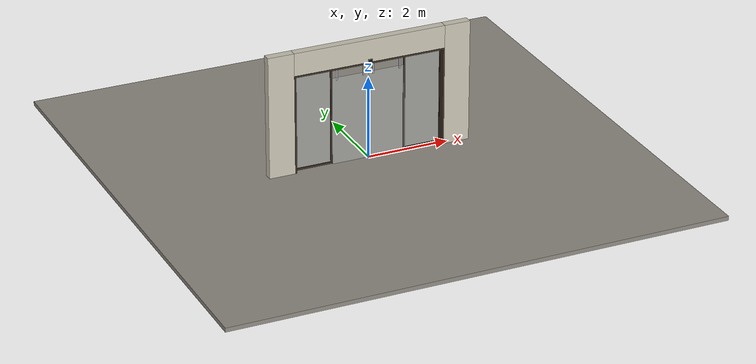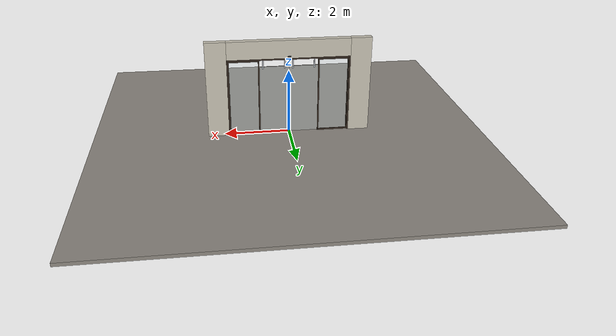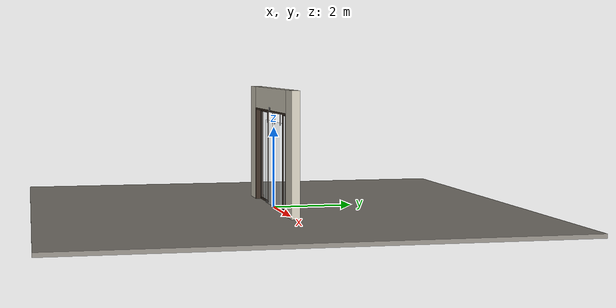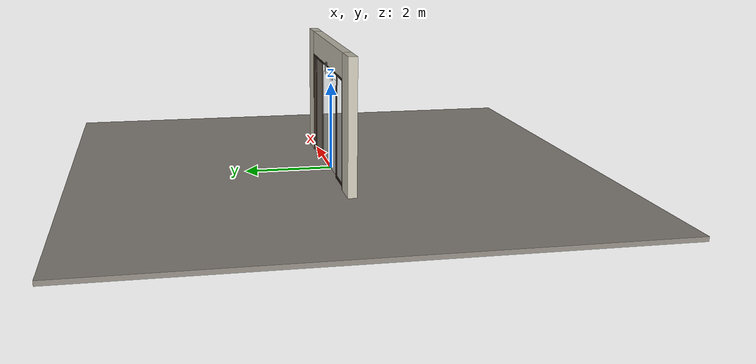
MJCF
<?xml version="1.0" ?>
<mujoco model="db0611_automatic_sliding_simple">
  <compiler angle="radian" meshdir="../../hardware" texturedir="../../textures" autolimits="true" inertiafromgeom="false"/>
  <option timestep="0.002" integrator="implicitfast" cone="elliptic" impratio="10" noslip_iterations="3">
    <flag multiccd="enable"/>
  </option>
  <size memory="16M"/>
  <default>
    <geom condim="4" solref="0.005 1" solimp="0.95 0.99 0.001"/>
    <joint solreflimit="0.005 1" solimplimit="0.95 0.99 0.001"/>
    <tendon solreflimit="0.005 1"/>
    <equality solref="0.002 1"/>
  </default>
  <visual>
    <headlight ambient="0.4 0.4 0.4" diffuse="0.7 0.7 0.7" specular="0.2 0.2 0.2"/>
    <quality shadowsize="4096"/>
    <map znear="0.01" zfar="60"/>
  </visual>
  <asset>
    <material name="mat_floor" rgba="0.55 0.53 0.5 1" specular="0.2" shininess="0.15" reflectance="0"/>
    <material name="mat_wall" rgba="0.78 0.76 0.7 1" specular="0.2" shininess="0.1" reflectance="0"/>
    <material name="mat_frame" rgba="0.22 0.17 0.13 1" specular="0.8" shininess="0.6" reflectance="0.4"/>
    <material name="mat_track" rgba="0.8 0.81 0.83 1" specular="0.8" shininess="0.6" reflectance="0.4"/>
    <material name="mat_fixed_glass" rgba="0.85 0.92 0.95 0.25" specular="0.2" shininess="0.95" reflectance="0.1"/>
    <material name="mat_leaf_a" rgba="0.85 0.92 0.95 0.25" specular="0.2" shininess="0.95" reflectance="0.1"/>
    <material name="mat_glass_leaf" rgba="0.85 0.92 0.95 0.25" specular="0.2" shininess="0.95" reflectance="0.1"/>
    <material name="mat_patch" rgba="0.75 0.76 0.77 1" specular="0.8" shininess="0.65" reflectance="0.4"/>
    <material name="mat_roller" rgba="0.65 0.66 0.68 1" specular="0.74" shininess="0.5" reflectance="0.36"/>
    <material name="mat_leaf_b" rgba="0.85 0.92 0.95 0.25" specular="0.2" shininess="0.95" reflectance="0.1"/>
    <material name="mat_sign" rgba="0.75 0.76 0.77 1" specular="0.8" shininess="0.65" reflectance="0.4"/>
    <material name="mat_wallreader" rgba="0.05 0.05 0.05 1" specular="0.38" shininess="0.3" reflectance="0.12"/>
    <material name="mat_hook" rgba="0.75 0.76 0.77 1" specular="0.8" shininess="0.65" reflectance="0.4"/>
    <texture name="skybox" type="skybox" builtin="gradient" rgb1="0.6 0.7 0.85" rgb2="0.9 0.92 0.95" width="256" height="256"/>
  </asset>
  <worldbody>
    <light name="sun" pos="1.5 -2.5 4" dir="-0.3 0.5 -0.8" directional="true" diffuse="0.8 0.8 0.8" specular="0.3 0.3 0.3" castshadow="true"/>
    <light name="fill" pos="-1.5 2.5 3" dir="0.3 -0.5 -0.7" directional="true" diffuse="0.35 0.35 0.4" castshadow="false"/>
    <camera name="robot_view" pos="0 -4.0375 2.3225" xyaxes="1 0 0 0 0.26963 0.962964" fovy="52"/>
    <camera name="far_view" pos="0 4.0375 2.3225" xyaxes="-1 0 0 0 -0.26963 0.962964" fovy="52"/>
    <camera name="iso" pos="3.0685 -3.3915 2.9685" xyaxes="0.741536 0.670913 0 -0.242917 0.268487 0.932151" fovy="46"/>
    <camera name="detail_handle" pos="0.48 -0.8 1.28" xyaxes="0.97561 0.219512 0 -0.070934 0.315262 0.94635" fovy="38"/>
    <geom name="floor" type="box" size="6 6 0.05" pos="0 0 -0.05" material="mat_floor" group="0" contype="1" conaffinity="1" friction="0.8 0.005 0.0001" density="2400"/>
    <geom name="wall_left" type="box" size="0.3175 0.1 1.492" pos="-2.1825 0 1.492" material="mat_wall" group="0" contype="1" conaffinity="1" friction="0.6 0.005 0.0001" density="800"/>
    <geom name="wall_right" type="box" size="0.3175 0.1 1.492" pos="2.1825 0 1.492" material="mat_wall" group="0" contype="1" conaffinity="1" friction="0.6 0.005 0.0001" density="800"/>
    <geom name="wall_header" type="box" size="1.865 0.1 0.2775" pos="0 0 2.7065" material="mat_wall" group="0" contype="1" conaffinity="1" friction="0.6 0.005 0.0001" density="800"/>
    <geom name="jamb_l" type="box" size="0.0225 0.1 1.192" pos="-1.8425 0 1.192" material="mat_frame" group="0" contype="1" conaffinity="1" friction="0.6 0.005 0.0001" density="300"/>
    <geom name="jamb_r" type="box" size="0.0225 0.1 1.192" pos="1.8425 0 1.192" material="mat_frame" group="0" contype="1" conaffinity="1" friction="0.6 0.005 0.0001" density="300"/>
    <geom name="jamb_head" type="box" size="1.865 0.1 0.0225" pos="0 0 2.4065" material="mat_frame" group="0" contype="1" conaffinity="1" friction="0.6 0.005 0.0001" density="300"/>
    <geom name="sidelite_l" type="box" size="0.435 0.003 1.142" pos="-1.365 0.042 1.192" material="mat_fixed_glass" group="0" contype="1" conaffinity="1" friction="0.6 0.005 0.0001" density="2500"/>
    <geom name="sidelite_l_stile_n" type="box" size="0.02 0.012 1.192" pos="-1.82 0.042 1.192" material="mat_frame" group="0" contype="1" conaffinity="1" friction="0.6 0.005 0.0001" density="1400"/>
    <geom name="sidelite_l_stile_p" type="box" size="0.02 0.012 1.192" pos="-0.91 0.042 1.192" material="mat_frame" group="0" contype="1" conaffinity="1" friction="0.6 0.005 0.0001" density="1400"/>
    <geom name="sidelite_l_sill" type="box" size="0.475 0.012 0.025" pos="-1.365 0.042 0.025" material="mat_frame" group="0" contype="1" conaffinity="1" friction="0.6 0.005 0.0001" density="1400"/>
    <geom name="sidelite_l_head" type="box" size="0.475 0.012 0.025" pos="-1.365 0.042 2.359" material="mat_frame" group="0" contype="1" conaffinity="1" friction="0.6 0.005 0.0001" density="1400"/>
    <geom name="sidelite_r" type="box" size="0.435 0.003 1.142" pos="1.365 0.042 1.192" material="mat_fixed_glass" group="0" contype="1" conaffinity="1" friction="0.6 0.005 0.0001" density="2500"/>
    <geom name="sidelite_r_stile_n" type="box" size="0.02 0.012 1.192" pos="0.91 0.042 1.192" material="mat_frame" group="0" contype="1" conaffinity="1" friction="0.6 0.005 0.0001" density="1400"/>
    <geom name="sidelite_r_stile_p" type="box" size="0.02 0.012 1.192" pos="1.82 0.042 1.192" material="mat_frame" group="0" contype="1" conaffinity="1" friction="0.6 0.005 0.0001" density="1400"/>
    <geom name="sidelite_r_sill" type="box" size="0.475 0.012 0.025" pos="1.365 0.042 0.025" material="mat_frame" group="0" contype="1" conaffinity="1" friction="0.6 0.005 0.0001" density="1400"/>
    <geom name="sidelite_r_head" type="box" size="0.475 0.012 0.025" pos="1.365 0.042 2.359" material="mat_frame" group="0" contype="1" conaffinity="1" friction="0.6 0.005 0.0001" density="1400"/>
    <geom name="leaf_a_track_header" type="box" size="0.94 0.09 0.09" pos="-0.89 0 2.519" material="mat_track" group="0" contype="1" conaffinity="1" friction="0.6 0.005 0.0001" density="2700"/>
    <geom name="leaf_b_track_header" type="box" size="0.94 0.09 0.09" pos="0.89 0 2.519" material="mat_track" group="0" contype="1" conaffinity="1" friction="0.6 0.005 0.0001" density="2700"/>
    <geom name="wave_sensor_n" type="box" size="0.05 0.012 0.05" pos="0 -0.112 2.454" material="mat_wallreader" group="0" contype="1" conaffinity="1" friction="0.6 0.005 0.0001" density="1000"/>
    <geom name="wave_sensor_n_pad" type="box" size="0.04 0.0055 0.04" pos="0 -0.095 2.454" material="mat_wallreader" group="1" contype="0" conaffinity="0" density="7850"/>
    <geom name="wave_sensor_p" type="box" size="0.05 0.012 0.05" pos="0 0.112 2.454" material="mat_wallreader" group="0" contype="1" conaffinity="1" friction="0.6 0.005 0.0001" density="1000"/>
    <geom name="wave_sensor_p_pad" type="box" size="0.04 0.0055 0.04" pos="0 0.095 2.454" material="mat_wallreader" group="1" contype="0" conaffinity="0" density="7850"/>
    <site name="approach_point" pos="0 -1.5 0" quat="1 0 0 0" size="0.05" rgba="0.2 0.9 0.2 0.5" group="4"/>
    <site name="goal_point" pos="0 1.5 0" quat="1 0 0 0" size="0.05" rgba="0.2 0.9 0.2 0.5" group="4"/>
    <site name="door_plane_center" pos="0 0 1.192" quat="1 0 0 0" size="0.02" rgba="0.2 0.9 0.2 0.5" group="4"/>
    <body name="leaf_a" pos="-0.45 0 0">
      <inertial pos="0 0 1.129479" mass="66.89681" quat="-0.5 0.5 0.5 0.5" diaginertia="4.6470325 28.071693757 32.697079612"/>
      <joint name="leaf_a_slide" type="slide" axis="-1 0 0" limited="true" range="0 0.88" damping="5.375535" frictionloss="39.723228" armature="0.5"/>
      <geom name="leaf_a_glass" type="box" size="0.45 0.0225 1.067" pos="0 0 1.079" material="mat_glass_leaf" group="0" contype="1" conaffinity="1" friction="0.4 0.005 0.0001" density="1"/>
      <geom name="leaf_a_carrier_0" type="box" size="0.02 0.005 0.147" pos="-0.33 0 2.233" material="mat_roller" group="1" contype="0" conaffinity="0" density="7850"/>
      <geom name="leaf_a_carrier_wheel_0" type="cylinder" size="0.014 0.006" pos="-0.33 0 2.37" quat="0.707107 -0.707107 0 0" material="mat_roller" group="1" contype="0" conaffinity="0" density="7850"/>
      <geom name="leaf_a_carrier_1" type="box" size="0.02 0.005 0.147" pos="0.33 0 2.233" material="mat_roller" group="1" contype="0" conaffinity="0" density="7850"/>
      <geom name="leaf_a_carrier_wheel_1" type="cylinder" size="0.014 0.006" pos="0.33 0 2.37" quat="0.707107 -0.707107 0 0" material="mat_roller" group="1" contype="0" conaffinity="0" density="7850"/>
      <site name="leaf_a_edge_mid" pos="0.45 0 1.079" quat="1 0 0 0" size="0.02" rgba="0.2 0.9 0.2 0.5" group="4"/>
    </body>
    <body name="leaf_b" pos="0.45 0 0">
      <inertial pos="0 0 1.129479" mass="66.87459" quat="0.5 0.5 0.5 -0.5" diaginertia="4.645488952 28.062369525 32.686219022"/>
      <joint name="leaf_b_slide" type="slide" axis="1 0 0" limited="true" range="0 0.88" damping="5.375535" frictionloss="39.723228" armature="0.5"/>
      <geom name="leaf_b_glass" type="box" size="0.45 0.0225 1.067" pos="0 0 1.079" material="mat_glass_leaf" group="0" contype="1" conaffinity="1" friction="0.4 0.005 0.0001" density="1"/>
      <geom name="leaf_b_carrier_0" type="box" size="0.02 0.005 0.147" pos="-0.33 0 2.233" material="mat_roller" group="1" contype="0" conaffinity="0" density="7850"/>
      <geom name="leaf_b_carrier_wheel_0" type="cylinder" size="0.014 0.006" pos="-0.33 0 2.37" quat="0.707107 -0.707107 0 0" material="mat_roller" group="1" contype="0" conaffinity="0" density="7850"/>
      <geom name="leaf_b_carrier_1" type="box" size="0.02 0.005 0.147" pos="0.33 0 2.233" material="mat_roller" group="1" contype="0" conaffinity="0" density="7850"/>
      <geom name="leaf_b_carrier_wheel_1" type="cylinder" size="0.014 0.006" pos="0.33 0 2.37" quat="0.707107 -0.707107 0 0" material="mat_roller" group="1" contype="0" conaffinity="0" density="7850"/>
      <site name="leaf_b_edge_mid" pos="-0.45 0 1.079" quat="1 0 0 0" size="0.02" rgba="0.2 0.9 0.2 0.5" group="4"/>
    </body>
  </worldbody>
  <equality>
    <joint name="center_couple" joint1="leaf_b_slide" joint2="leaf_a_slide" polycoef="0 1 0 0 0" active="true"/>
  </equality>
  <actuator>
    <position name="leaf_a_drive" joint="leaf_a_slide" kp="400" kv="60" forcerange="-150 150" ctrlrange="0 0.88"/>
    <position name="leaf_b_drive" joint="leaf_b_slide" kp="400" kv="60" forcerange="-150 150" ctrlrange="0 0.88"/>
  </actuator>
  <sensor>
    <jointpos name="leaf_a_slide_pos" joint="leaf_a_slide"/>
    <jointvel name="leaf_a_slide_vel" joint="leaf_a_slide"/>
    <jointpos name="leaf_b_slide_pos" joint="leaf_b_slide"/>
    <jointvel name="leaf_b_slide_vel" joint="leaf_b_slide"/>
  </sensor>
</mujoco>
